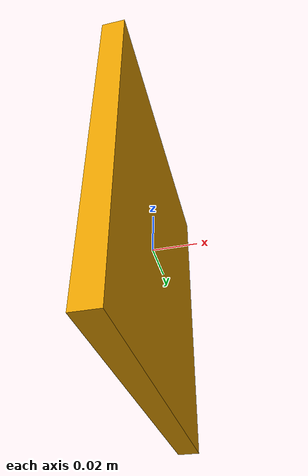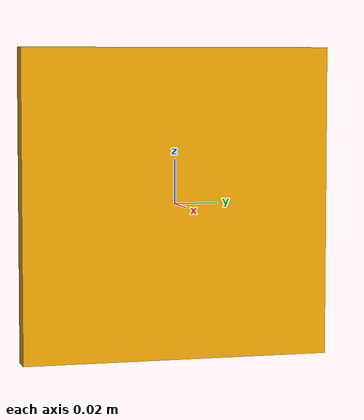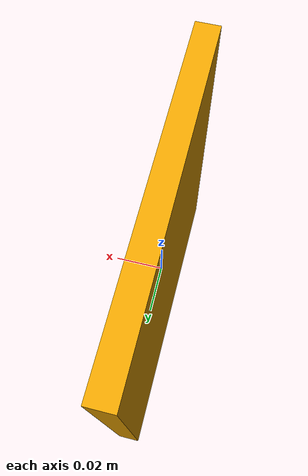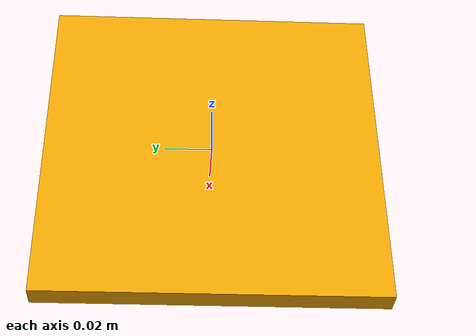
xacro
<?xml version="1.0"?>
<robot xmlns:xacro="http://www.ros.org/wiki/xacro" name="square">
    <xacro:property name="height" value="0.14"/>
    <xacro:property name="side" value="${sqrt(2)}"/>
    <xacro:property name="mesh_scale" value="${height/side}"/>
    <xacro:property name="x" value="${0.1 * mesh_scale}"/>
    <xacro:property name="y" value="${side * mesh_scale}"/>
    <xacro:property name="z" value="${side * mesh_scale}"/>
    <xacro:property name="mass" value="1.0"/>
    <link name="base_link">
        <visual>
            <geometry>
                <mesh filename="square.obj" scale="${mesh_scale} ${mesh_scale} ${mesh_scale}"/>
            </geometry>
        </visual>
        <collision>
            <geometry>
                <box size="${x} ${y} ${z}"/>
            </geometry>
        </collision>
        <inertial>
            <mass value="${mass}"/>
            <inertia ixx="${mass * (z**2 + y**2) / 12}" ixy="0.0" ixz="0.0"
                     iyy="${mass * (z**2 + x**2) / 12}" iyz="0.0"
                     izz="${mass * (x**2 + y**2) / 12}"/>
        </inertial>
    </link>
</robot>
